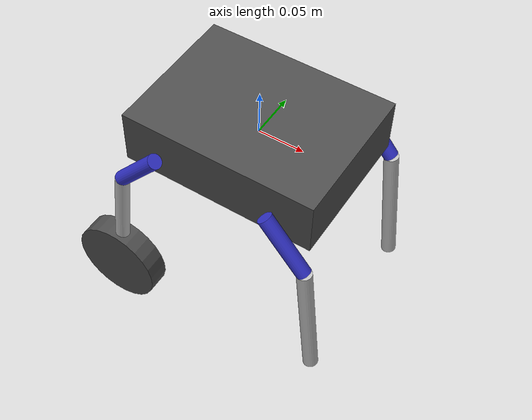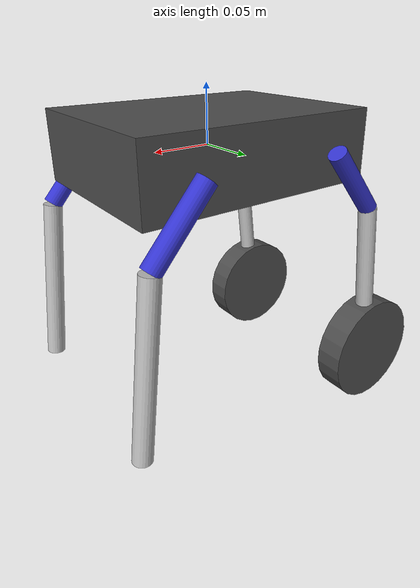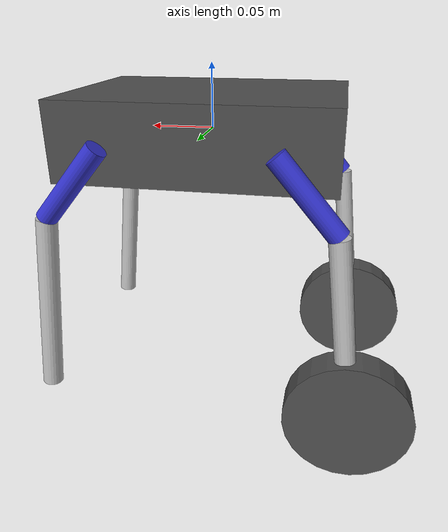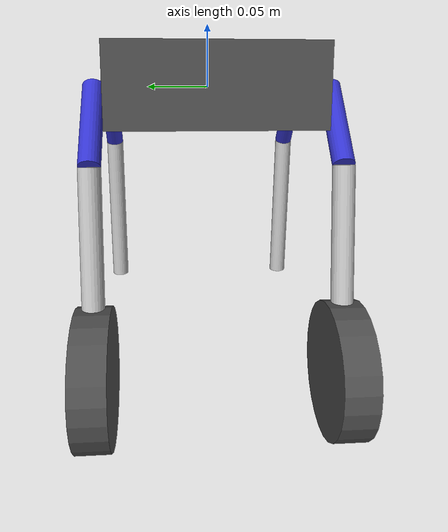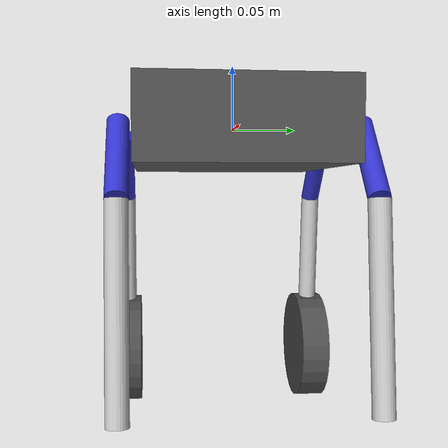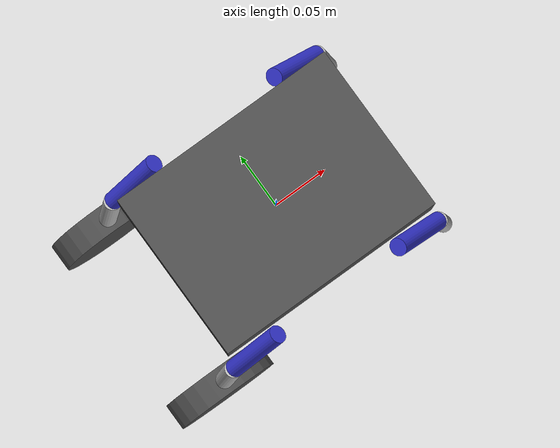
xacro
<?xml version="1.0"?>
<robot name="wlr_robot" xmlns:xacro="http://www.ros.org/wiki/xacro">

  <xacro:include filename="$(find wlr_description)/urdf/materials.xacro"/>
  <xacro:include filename="$(find wlr_description)/urdf/leg.urdf.xacro"/>
  <xacro:include filename="$(find wlr_description)/urdf/gazebo.xacro"/>

  <!-- ==================== Body ==================== -->
  <!-- Body dimensions: 210mm x 155mm x 60mm, mass 2.19kg -->

  <xacro:property name="body_length" value="0.210"/>
  <xacro:property name="body_width"  value="0.155"/>
  <xacro:property name="body_height" value="0.060"/>
  <xacro:property name="body_mass"   value="2.19"/>

  <link name="base_link">
    <visual>
      <origin xyz="0 0 0" rpy="0 0 0"/>
      <geometry>
        <box size="${body_length} ${body_width} ${body_height}"/>
      </geometry>
      <material name="dark_grey"/>
    </visual>
    <collision>
      <origin xyz="0 0 0" rpy="0 0 0"/>
      <geometry>
        <box size="${body_length} ${body_width} ${body_height}"/>
      </geometry>
    </collision>
    <inertial>
      <origin xyz="0 0 0" rpy="0 0 0"/>
      <mass value="${body_mass}"/>
      <inertia
        ixx="${body_mass*(body_width*body_width+body_height*body_height)/12}"
        ixy="0" ixz="0"
        iyy="${body_mass*(body_length*body_length+body_height*body_height)/12}"
        iyz="0"
        izz="${body_mass*(body_length*body_length+body_width*body_width)/12}"/>
    </inertial>
  </link>

  <!-- ==================== IMU ==================== -->

  <joint name="imu_joint" type="fixed">
    <parent link="base_link"/>
    <child link="imu_link"/>
    <origin xyz="0 0 0" rpy="0 0 0"/>
  </joint>

  <link name="imu_link">
    <inertial>
      <mass value="0.01"/>
      <inertia ixx="1e-6" ixy="0" ixz="0" iyy="1e-6" iyz="0" izz="1e-6"/>
    </inertial>
  </link>

  <!-- ==================== Legs ==================== -->

  <xacro:leg side="left"  y_sign="1"  parent="base_link"/>
  <xacro:leg side="right" y_sign="-1" parent="base_link"/>

</robot>

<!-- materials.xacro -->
<robot xmlns:xacro="http://www.ros.org/wiki/xacro">

  <material name="black">
    <color rgba="0.1 0.1 0.1 1.0"/>
  </material>

  <material name="dark_grey">
    <color rgba="0.3 0.3 0.3 1.0"/>
  </material>

  <material name="grey">
    <color rgba="0.5 0.5 0.5 1.0"/>
  </material>

  <material name="silver">
    <color rgba="0.75 0.75 0.75 1.0"/>
  </material>

  <material name="blue">
    <color rgba="0.2 0.2 0.8 1.0"/>
  </material>

  <material name="orange">
    <color rgba="1.0 0.5 0.0 1.0"/>
  </material>

  <material name="red">
    <color rgba="0.8 0.1 0.1 1.0"/>
  </material>

</robot>

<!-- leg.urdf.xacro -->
<robot xmlns:xacro="http://www.ros.org/wiki/xacro">

  <xacro:property name="l1" value="0.07"/>
  <xacro:property name="l2" value="0.147"/>
  <xacro:property name="l3" value="0.147"/>
  <xacro:property name="l4" value="0.07"/>
  <xacro:property name="l5" value="0.123"/>
  <xacro:property name="wheel_radius" value="0.05"/>
  <xacro:property name="wheel_width" value="0.025"/>
  <xacro:property name="link_radius" value="0.008"/>
  <xacro:property name="body_width" value="0.155"/>

  <xacro:property name="hip_init_front" value="-0.7"/>
  <xacro:property name="hip_init_rear" value="0.7"/>

  <xacro:property name="knee_init_front" value="0.5882"/>
  <xacro:property name="knee_init_rear" value="-0.5882"/>

  <!-- Masses from thesis Table 2.1 -->
  <xacro:property name="upper_link_mass" value="0.039"/>
  <xacro:property name="lower_link_mass" value="0.072"/>
  <xacro:property name="wheel_mass" value="0.340"/>

  <!-- Y offset from body center to hip joint -->
  <xacro:property name="hip_y_offset" value="${body_width/2 + 0.01}"/>

  <xacro:macro name="cylinder_inertia" params="mass radius length">
    <inertia
      ixx="${mass*(3*radius*radius+length*length)/12}"
      ixy="0" ixz="0"
      iyy="${mass*(3*radius*radius+length*length)/12}"
      iyz="0"
      izz="${mass*radius*radius/2}"/>
  </xacro:macro>

  <xacro:macro name="link_inertia" params="mass length">
    <!-- Thin cylinder along Z: ixx=iyy=m(3r^2+L^2)/12, izz=mr^2/2 -->
    <inertia
      ixx="${mass*(3*link_radius*link_radius+length*length)/12}"
      ixy="0" ixz="0"
      iyy="${mass*(3*link_radius*link_radius+length*length)/12}"
      iyz="0"
      izz="${mass*link_radius*link_radius/2}"/>
  </xacro:macro>

  <xacro:macro name="leg" params="side y_sign parent">

    <!-- ==================== FRONT CHAIN (A -> B -> C_front) ==================== -->

    <!-- Front hip joint (A) - ACTUATED -->
    <joint name="${side}_hip_front_joint" type="revolute">
      <parent link="${parent}"/>
      <child link="${side}_upper_front"/>
      <origin xyz="${l5/2} ${y_sign * hip_y_offset} 0" rpy="0 ${hip_init_front} 0"/>
      <axis xyz="0 1 0"/>
      <limit lower="-1.5" upper="1.5" effort="10.0" velocity="20.0"/>
      <dynamics damping="0.01" friction="0.005"/>
    </joint>

    <!-- Upper front link (A-B, length l1) -->
    <link name="${side}_upper_front">
      <visual>
        <origin xyz="0 0 ${-l1/2}" rpy="0 0 0"/>
        <geometry>
          <cylinder radius="${link_radius}" length="${l1}"/>
        </geometry>
        <material name="blue"/>
      </visual>
      <collision>
        <origin xyz="0 0 ${-l1/2}" rpy="0 0 0"/>
        <geometry>
          <cylinder radius="${link_radius}" length="${l1}"/>
        </geometry>
      </collision>
      <inertial>
        <origin xyz="0 0 ${-l1/2}" rpy="0 0 0"/>
        <mass value="${upper_link_mass}"/>
        <xacro:link_inertia mass="${upper_link_mass}" length="${l1}"/>
      </inertial>
    </link>

    <!-- Front knee joint (B) - PASSIVE -->
    <joint name="${side}_knee_front_joint" type="revolute">
      <parent link="${side}_upper_front"/>
      <child link="${side}_lower_front"/>
      <origin xyz="0 0 ${-l1}" rpy="0 ${knee_init_front} 0"/>
      <axis xyz="0 1 0"/>
      <limit lower="-3.14159" upper="3.14159" effort="0" velocity="20.0"/>
      <dynamics damping="0.005" friction="0.002"/>
    </joint>

    <!-- Lower front link (B-C, length l2) -->
    <link name="${side}_lower_front">
      <visual>
        <origin xyz="0 0 ${-l2/2}" rpy="0 0 0"/>
        <geometry>
          <cylinder radius="${link_radius}" length="${l2}"/>
        </geometry>
        <material name="silver"/>
      </visual>
      <collision>
        <origin xyz="0 0 ${-l2/2}" rpy="0 0 0"/>
        <geometry>
          <cylinder radius="${link_radius}" length="${l2}"/>
        </geometry>
      </collision>
      <inertial>
        <origin xyz="0 0 ${-l2/2}" rpy="0 0 0"/>
        <mass value="${lower_link_mass}"/>
        <xacro:link_inertia mass="${lower_link_mass}" length="${l2}"/>
      </inertial>
    </link>

    <!-- Foot front (dummy link at C for closure) -->
    <joint name="${side}_foot_front_joint" type="fixed">
      <parent link="${side}_lower_front"/>
      <child link="${side}_foot_front"/>
      <origin xyz="0 0 ${-l2}" rpy="0 0 0"/>
    </joint>

    <link name="${side}_foot_front">
      <inertial>
        <mass value="0.05"/>
        <inertia ixx="1e-5" ixy="0" ixz="0" iyy="1e-5" iyz="0" izz="1e-5"/>
      </inertial>
    </link>

    <!-- ==================== REAR CHAIN (E -> D -> C_rear -> wheel) ==================== -->

    <!-- Rear hip joint (E) - ACTUATED -->
    <joint name="${side}_hip_rear_joint" type="revolute">
      <parent link="${parent}"/>
      <child link="${side}_upper_rear"/>
      <origin xyz="${-l5/2} ${y_sign * hip_y_offset} 0" rpy="0 ${hip_init_rear} 0"/>
      <axis xyz="0 1 0"/>
      <limit lower="-1.5" upper="1.5" effort="10.0" velocity="20.0"/>
      <dynamics damping="0.01" friction="0.005"/>
    </joint>

    <!-- Upper rear link (E-D, length l4) -->
    <link name="${side}_upper_rear">
      <visual>
        <origin xyz="0 0 ${-l4/2}" rpy="0 0 0"/>
        <geometry>
          <cylinder radius="${link_radius}" length="${l4}"/>
        </geometry>
        <material name="blue"/>
      </visual>
      <collision>
        <origin xyz="0 0 ${-l4/2}" rpy="0 0 0"/>
        <geometry>
          <cylinder radius="${link_radius}" length="${l4}"/>
        </geometry>
      </collision>
      <inertial>
        <origin xyz="0 0 ${-l4/2}" rpy="0 0 0"/>
        <mass value="${upper_link_mass}"/>
        <xacro:link_inertia mass="${upper_link_mass}" length="${l4}"/>
      </inertial>
    </link>

    <!-- Rear knee joint (D) - PASSIVE -->
    <joint name="${side}_knee_rear_joint" type="revolute">
      <parent link="${side}_upper_rear"/>
      <child link="${side}_lower_rear"/>
      <origin xyz="0 0 ${-l4}" rpy="0 ${knee_init_rear} 0"/>
      <axis xyz="0 1 0"/>
      <limit lower="-3.14159" upper="3.14159" effort="0" velocity="20.0"/>
      <dynamics damping="0.005" friction="0.002"/>
    </joint>

    <!-- Lower rear link (D-C, length l3) -->
    <link name="${side}_lower_rear">
      <visual>
        <origin xyz="0 0 ${-l3/2}" rpy="0 0 0"/>
        <geometry>
          <cylinder radius="${link_radius}" length="${l3}"/>
        </geometry>
        <material name="silver"/>
      </visual>
      <collision>
        <origin xyz="0 0 ${-l3/2}" rpy="0 0 0"/>
        <geometry>
          <cylinder radius="${link_radius}" length="${l3}"/>
        </geometry>
      </collision>
      <inertial>
        <origin xyz="0 0 ${-l3/2}" rpy="0 0 0"/>
        <mass value="${lower_link_mass}"/>
        <xacro:link_inertia mass="${lower_link_mass}" length="${l3}"/>
      </inertial>
    </link>

    <!-- Foot rear (endpoint of rear chain, where wheel attaches) -->
    <joint name="${side}_foot_rear_joint" type="fixed">
      <parent link="${side}_lower_rear"/>
      <child link="${side}_foot_rear"/>
      <origin xyz="0 0 ${-l3}" rpy="0 0 0"/>
    </joint>

    <link name="${side}_foot_rear">
      <inertial>
        <mass value="0.05"/>
        <inertia ixx="1e-5" ixy="0" ixz="0" iyy="1e-5" iyz="0" izz="1e-5"/>
      </inertial>
    </link>

    <!-- ==================== WHEEL ==================== -->

    <!-- Wheel joint at C point (attached to rear chain endpoint) -->
    <joint name="${side}_wheel_joint" type="continuous">
      <parent link="${side}_foot_rear"/>
      <child link="${side}_wheel"/>
      <origin xyz="0 0 0" rpy="0 0 0"/>
      <axis xyz="0 1 0"/>
      <dynamics damping="0.001" friction="0.001"/>
    </joint>

    <link name="${side}_wheel">
      <visual>
        <origin xyz="0 0 0" rpy="${pi/2} 0 0"/>
        <geometry>
          <cylinder radius="${wheel_radius}" length="${wheel_width}"/>
        </geometry>
        <material name="dark_grey"/>
      </visual>
      <collision>
        <origin xyz="0 0 0" rpy="${pi/2} 0 0"/>
        <geometry>
          <cylinder radius="${wheel_radius}" length="${wheel_width}"/>
        </geometry>
      </collision>
      <inertial>
        <origin xyz="0 0 0" rpy="${pi/2} 0 0"/>
        <mass value="${wheel_mass}"/>
        <xacro:cylinder_inertia mass="${wheel_mass}" radius="${wheel_radius}" length="${wheel_width}"/>
      </inertial>
    </link>

  </xacro:macro>

</robot>
